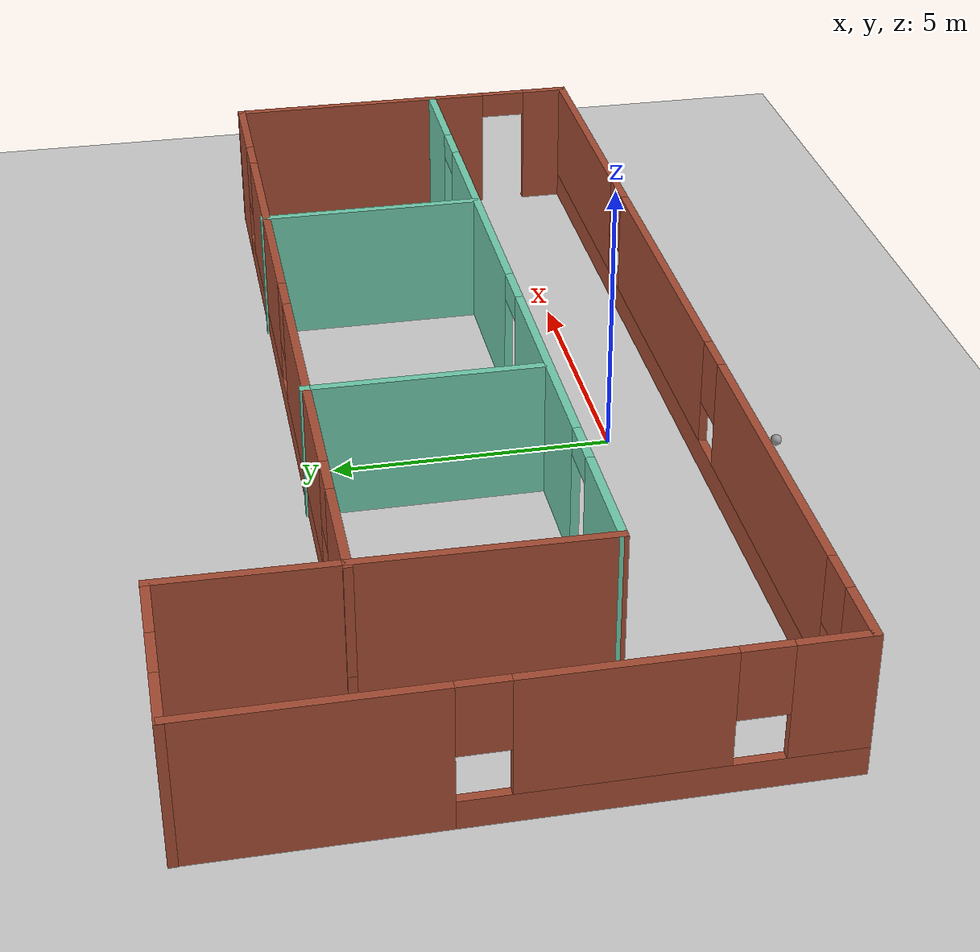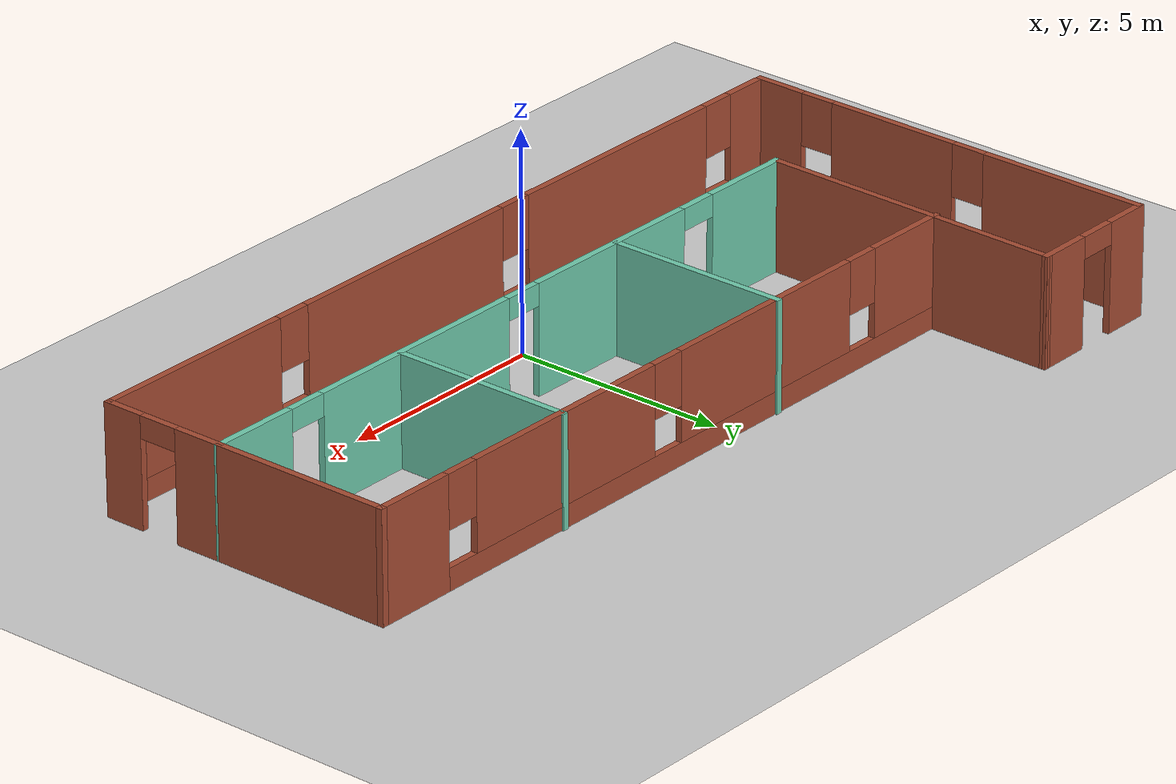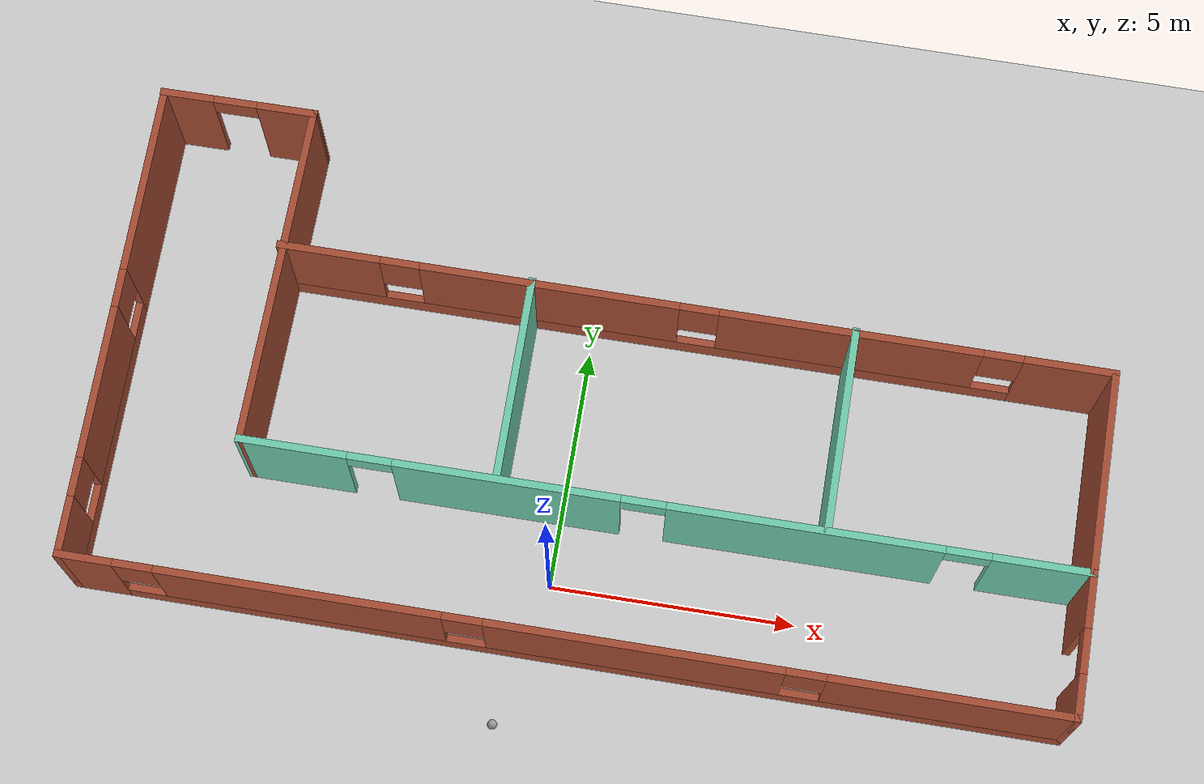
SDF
<sdf version="1.6">
 <world name="default">
  <model name="ground_plane">
   <static>1</static>
   <link name="link">
    <collision name="collision">
     <geometry><plane><normal>0 0 1</normal><size>100 100</size></plane></geometry>
     <surface>
      <contact><collide_bitmask>65535</collide_bitmask></contact>
      <friction><ode><mu>100</mu><mu2>50</mu2></ode></friction>
     </surface>
    </collision>
    <visual name="visual">
     <cast_shadows>0</cast_shadows>
     <geometry><plane><normal>0 0 1</normal><size>100 100</size></plane></geometry>
     <material>
      <script><uri>file://media/materials/scripts/gazebo.material</uri><name>Gazebo/Grey</name></script>
     </material>
    </visual>
   </link>
  </model>
  <light name="sun" type="directional">
   <pose>0 0 10 0 -0 0</pose>
   <diffuse>0.8 0.8 0.8 1</diffuse>
   <specular>0.2 0.2 0.2 1</specular>
   <attenuation>
    <range>1000</range>
    <constant>0.9</constant>
    <linear>0.01</linear>
    <quadratic>0.001</quadratic>
   </attenuation>
   <direction>-0.5 0.1 -0.9</direction>
  </light>
  <gravity>0 0 -9.8</gravity>
  <magnetic_field>6e-06 2.3e-05 -4.2e-05</magnetic_field>
  <atmosphere type="adiabatic"/>
  <physics name="default_physics" default="0" type="ode">
   <max_step_size>0.001</max_step_size>
   <real_time_factor>1</real_time_factor>
   <real_time_update_rate>1000</real_time_update_rate>
  </physics>
  <scene><ambient>0.4 0.4 0.4 1</ambient><background>0.7 0.7 0.7 1</background><shadows>1</shadows></scene>
  <audio><device>default</device></audio>
  <spherical_coordinates>
   <surface_model>EARTH_WGS84</surface_model>
   <latitude_deg>0</latitude_deg>
   <longitude_deg>0</longitude_deg>
   <elevation>0</elevation>
   <heading_deg>0</heading_deg>
  </spherical_coordinates>
  <model name="offices">
   <pose>0.53565 3.48194 0 0 -0 0</pose>
   <link name="Wall_1">
    <pose>-9.9198 -0.025582 0 0 -0 -1.5708</pose>
    <visual name="Wall_1_Visual_0">
     <pose>-3.0075 0 1.25 0 -0 0</pose>
     <geometry><box><size>3.965 0.15 2.5</size></box></geometry>
     <material>
      <script><uri>file://media/materials/scripts/gazebo.material</uri><name>Gazebo/Bricks</name></script>
      <ambient>1 1 1 1</ambient>
     </material>
     <meta><layer>0</layer></meta>
    </visual>
    <collision name="Wall_1_Collision_0">
     <geometry><box><size>3.965 0.15 2.5</size></box></geometry>
     <pose>-3.0075 0 1.25 0 -0 0</pose>
    </collision>
    <visual name="Wall_1_Visual_1">
     <pose>1.9825 0 0.25 0 -0 0</pose>
     <geometry><box><size>6.015 0.15 0.5</size></box></geometry>
     <material>
      <script><uri>file://media/materials/scripts/gazebo.material</uri><name>Gazebo/Bricks</name></script>
      <ambient>1 1 1 1</ambient>
     </material>
     <meta><layer>0</layer></meta>
    </visual>
    <collision name="Wall_1_Collision_1">
     <geometry><box><size>6.015 0.15 0.5</size></box></geometry>
     <pose>1.9825 0 0.25 0 -0 0</pose>
    </collision>
    <visual name="Wall_1_Visual_2">
     <pose>1.36 0 1.5 0 -0 0</pose>
     <geometry><box><size>3.17 0.15 2</size></box></geometry>
     <material>
      <script><uri>file://media/materials/scripts/gazebo.material</uri><name>Gazebo/Bricks</name></script>
      <ambient>1 1 1 1</ambient>
     </material>
     <meta><layer>0</layer></meta>
    </visual>
    <collision name="Wall_1_Collision_2">
     <geometry><box><size>3.17 0.15 2</size></box></geometry>
     <pose>1.36 0 1.5 0 -0 0</pose>
    </collision>
    <visual name="Wall_1_Visual_3">
     <pose>4.3675 0 1.5 0 -0 0</pose>
     <geometry><box><size>1.245 0.15 2</size></box></geometry>
     <material>
      <script><uri>file://media/materials/scripts/gazebo.material</uri><name>Gazebo/Bricks</name></script>
      <ambient>1 1 1 1</ambient>
     </material>
     <meta><layer>0</layer></meta>
    </visual>
    <collision name="Wall_1_Collision_3">
     <geometry><box><size>1.245 0.15 2</size></box></geometry>
     <pose>4.3675 0 1.5 0 -0 0</pose>
    </collision>
    <visual name="Wall_1_Visual_4">
     <pose>-0.625 0 1.9 0 -0 0</pose>
     <geometry><box><size>0.8 0.15 1.2</size></box></geometry>
     <material>
      <script><uri>file://media/materials/scripts/gazebo.material</uri><name>Gazebo/Bricks</name></script>
      <ambient>1 1 1 1</ambient>
     </material>
     <meta><layer>0</layer></meta>
    </visual>
    <collision name="Wall_1_Collision_4">
     <geometry><box><size>0.8 0.15 1.2</size></box></geometry>
     <pose>-0.625 0 1.9 0 -0 0</pose>
    </collision>
    <visual name="Wall_1_Visual_5">
     <pose>3.345 0 1.9 0 -0 0</pose>
     <geometry><box><size>0.8 0.15 1.2</size></box></geometry>
     <material>
      <script><uri>file://media/materials/scripts/gazebo.material</uri><name>Gazebo/Bricks</name></script>
      <ambient>1 1 1 1</ambient>
     </material>
     <meta><layer>0</layer></meta>
    </visual>
    <collision name="Wall_1_Collision_5">
     <geometry><box><size>0.8 0.15 1.2</size></box></geometry>
     <pose>3.345 0 1.9 0 -0 0</pose>
    </collision>
   </link>
   <link name="Wall_11">
    <collision name="Wall_11_Collision">
     <geometry><box><size>4.25 0.15 2.5</size></box></geometry>
     <pose>0 0 1.25 0 -0 0</pose>
    </collision>
    <visual name="Wall_11_Visual">
     <pose>0 0 1.25 0 -0 0</pose>
     <geometry><box><size>4.25 0.15 2.5</size></box></geometry>
     <material>
      <script><uri>file://media/materials/scripts/gazebo.material</uri><name>Gazebo/Bricks</name></script>
      <ambient>1 1 1 1</ambient>
     </material>
     <meta><layer>0</layer></meta>
    </visual>
    <pose>9.9302 -0.020582 0 0 -0 1.5708</pose>
   </link>
   <link name="Wall_12">
    <pose>1.5052 2.02942 0 0 -0 3.14159</pose>
    <visual name="Wall_12_Visual_0">
     <pose>-7.5475 0 1.25 0 -0 0</pose>
     <geometry><box><size>1.905 0.15 2.5</size></box></geometry>
     <material>
      <script><uri>file://media/materials/scripts/gazebo.material</uri><name>Gazebo/Bricks</name></script>
      <ambient>1 1 1 1</ambient>
     </material>
     <meta><layer>0</layer></meta>
    </visual>
    <collision name="Wall_12_Collision_0">
     <geometry><box><size>1.905 0.15 2.5</size></box></geometry>
     <pose>-7.5475 0 1.25 0 -0 0</pose>
    </collision>
    <visual name="Wall_12_Visual_1">
     <pose>0.9525 0 0.25 0 -0 0</pose>
     <geometry><box><size>15.095 0.15 0.5</size></box></geometry>
     <material>
      <script><uri>file://media/materials/scripts/gazebo.material</uri><name>Gazebo/Bricks</name></script>
      <ambient>1 1 1 1</ambient>
     </material>
     <meta><layer>0</layer></meta>
    </visual>
    <collision name="Wall_12_Collision_1">
     <geometry><box><size>15.095 0.15 0.5</size></box></geometry>
     <pose>0.9525 0 0.25 0 -0 0</pose>
    </collision>
    <visual name="Wall_12_Visual_2">
     <pose>-3.145 0 1.5 0 -0 0</pose>
     <geometry><box><size>5.3 0.15 2</size></box></geometry>
     <material>
      <script><uri>file://media/materials/scripts/gazebo.material</uri><name>Gazebo/Bricks</name></script>
      <ambient>1 1 1 1</ambient>
     </material>
     <meta><layer>0</layer></meta>
    </visual>
    <collision name="Wall_12_Collision_2">
     <geometry><box><size>5.3 0.15 2</size></box></geometry>
     <pose>-3.145 0 1.5 0 -0 0</pose>
    </collision>
    <visual name="Wall_12_Visual_3">
     <pose>2.945 0 1.5 0 -0 0</pose>
     <geometry><box><size>5.28 0.15 2</size></box></geometry>
     <material>
      <script><uri>file://media/materials/scripts/gazebo.material</uri><name>Gazebo/Bricks</name></script>
      <ambient>1 1 1 1</ambient>
     </material>
     <meta><layer>0</layer></meta>
    </visual>
    <collision name="Wall_12_Collision_3">
     <geometry><box><size>5.28 0.15 2</size></box></geometry>
     <pose>2.945 0 1.5 0 -0 0</pose>
    </collision>
    <visual name="Wall_12_Visual_4">
     <pose>7.4425 0 1.5 0 -0 0</pose>
     <geometry><box><size>2.115 0.15 2</size></box></geometry>
     <material>
      <script><uri>file://media/materials/scripts/gazebo.material</uri><name>Gazebo/Bricks</name></script>
      <ambient>1 1 1 1</ambient>
     </material>
     <meta><layer>0</layer></meta>
    </visual>
    <collision name="Wall_12_Collision_4">
     <geometry><box><size>2.115 0.15 2</size></box></geometry>
     <pose>7.4425 0 1.5 0 -0 0</pose>
    </collision>
    <visual name="Wall_12_Visual_5">
     <pose>-6.195 0 1.9 0 -0 0</pose>
     <geometry><box><size>0.8 0.15 1.2</size></box></geometry>
     <material>
      <script><uri>file://media/materials/scripts/gazebo.material</uri><name>Gazebo/Bricks</name></script>
      <ambient>1 1 1 1</ambient>
     </material>
     <meta><layer>0</layer></meta>
    </visual>
    <collision name="Wall_12_Collision_5">
     <geometry><box><size>0.8 0.15 1.2</size></box></geometry>
     <pose>-6.195 0 1.9 0 -0 0</pose>
    </collision>
    <visual name="Wall_12_Visual_6">
     <pose>-0.095 0 1.9 0 -0 0</pose>
     <geometry><box><size>0.8 0.15 1.2</size></box></geometry>
     <material>
      <script><uri>file://media/materials/scripts/gazebo.material</uri><name>Gazebo/Bricks</name></script>
      <ambient>1 1 1 1</ambient>
     </material>
     <meta><layer>0</layer></meta>
    </visual>
    <collision name="Wall_12_Collision_6">
     <geometry><box><size>0.8 0.15 1.2</size></box></geometry>
     <pose>-0.095 0 1.9 0 -0 0</pose>
    </collision>
    <visual name="Wall_12_Visual_7">
     <pose>5.985 0 1.9 0 -0 0</pose>
     <geometry><box><size>0.8 0.15 1.2</size></box></geometry>
     <material>
      <script><uri>file://media/materials/scripts/gazebo.material</uri><name>Gazebo/Bricks</name></script>
      <ambient>1 1 1 1</ambient>
     </material>
     <meta><layer>0</layer></meta>
    </visual>
    <collision name="Wall_12_Collision_7">
     <geometry><box><size>0.8 0.15 1.2</size></box></geometry>
     <pose>5.985 0 1.9 0 -0 0</pose>
    </collision>
   </link>
   <link name="Wall_14">
    <collision name="Wall_14_Collision">
     <geometry><box><size>4.25 0.15 2.5</size></box></geometry>
     <pose>0 0 1.25 0 -0 0</pose>
    </collision>
    <visual name="Wall_14_Visual">
     <pose>0 0 1.25 0 -0 0</pose>
     <geometry><box><size>4.25 0.15 2.5</size></box></geometry>
     <material>
      <script><uri>file://media/materials/scripts/gazebo.material</uri><name>Gazebo/Grey</name></script>
      <ambient>0.435294 0.796078 0.67451 1</ambient>
     </material>
     <meta><layer>0</layer></meta>
    </visual>
    <pose>-1.7998 0.019418 0 0 -0 -1.5708</pose>
   </link>
   <link name="Wall_16">
    <collision name="Wall_16_Collision">
     <geometry><box><size>4.25 0.15 2.5</size></box></geometry>
     <pose>0 0 1.25 0 -0 0</pose>
    </collision>
    <visual name="Wall_16_Visual">
     <pose>0 0 1.25 0 -0 0</pose>
     <geometry><box><size>4.25 0.15 2.5</size></box></geometry>
     <material>
      <script><uri>file://media/materials/scripts/gazebo.material</uri><name>Gazebo/Grey</name></script>
      <ambient>0.435294 0.796078 0.67451 1</ambient>
     </material>
     <meta><layer>0</layer></meta>
    </visual>
    <pose>4.7402 0.019418 0 0 -0 -1.5708</pose>
   </link>
   <link name="Wall_2">
    <pose>0.005198 -4.94058 0 0 -0 0</pose>
    <visual name="Wall_2_Visual_0">
     <pose>-9.4225 0 1.25 0 -0 0</pose>
     <geometry><box><size>1.155 0.15 2.5</size></box></geometry>
     <material>
      <script><uri>file://media/materials/scripts/gazebo.material</uri><name>Gazebo/Bricks</name></script>
      <ambient>1 1 1 1</ambient>
     </material>
     <meta><layer>0</layer></meta>
    </visual>
    <collision name="Wall_2_Collision_0">
     <geometry><box><size>1.155 0.15 2.5</size></box></geometry>
     <pose>-9.4225 0 1.25 0 -0 0</pose>
    </collision>
    <visual name="Wall_2_Visual_1">
     <pose>0.5775 0 0.25 0 -0 0</pose>
     <geometry><box><size>18.845 0.15 0.5</size></box></geometry>
     <material>
      <script><uri>file://media/materials/scripts/gazebo.material</uri><name>Gazebo/Bricks</name></script>
      <ambient>1 1 1 1</ambient>
     </material>
     <meta><layer>0</layer></meta>
    </visual>
    <collision name="Wall_2_Collision_1">
     <geometry><box><size>18.845 0.15 0.5</size></box></geometry>
     <pose>0.5775 0 0.25 0 -0 0</pose>
    </collision>
    <visual name="Wall_2_Visual_2">
     <pose>-5.205 0 1.5 0 -0 0</pose>
     <geometry><box><size>5.68 0.15 2</size></box></geometry>
     <material>
      <script><uri>file://media/materials/scripts/gazebo.material</uri><name>Gazebo/Bricks</name></script>
      <ambient>1 1 1 1</ambient>
     </material>
     <meta><layer>0</layer></meta>
    </visual>
    <collision name="Wall_2_Collision_2">
     <geometry><box><size>5.68 0.15 2</size></box></geometry>
     <pose>-5.205 0 1.5 0 -0 0</pose>
    </collision>
    <visual name="Wall_2_Visual_3">
     <pose>1.375 0 1.5 0 -0 0</pose>
     <geometry><box><size>5.88 0.15 2</size></box></geometry>
     <material>
      <script><uri>file://media/materials/scripts/gazebo.material</uri><name>Gazebo/Bricks</name></script>
      <ambient>1 1 1 1</ambient>
     </material>
     <meta><layer>0</layer></meta>
    </visual>
    <collision name="Wall_2_Collision_3">
     <geometry><box><size>5.88 0.15 2</size></box></geometry>
     <pose>1.375 0 1.5 0 -0 0</pose>
    </collision>
    <visual name="Wall_2_Visual_4">
     <pose>7.5575 0 1.5 0 -0 0</pose>
     <geometry><box><size>4.885 0.15 2</size></box></geometry>
     <material>
      <script><uri>file://media/materials/scripts/gazebo.material</uri><name>Gazebo/Bricks</name></script>
      <ambient>1 1 1 1</ambient>
     </material>
     <meta><layer>0</layer></meta>
    </visual>
    <collision name="Wall_2_Collision_4">
     <geometry><box><size>4.885 0.15 2</size></box></geometry>
     <pose>7.5575 0 1.5 0 -0 0</pose>
    </collision>
    <visual name="Wall_2_Visual_5">
     <pose>-8.445 0 1.9 0 -0 0</pose>
     <geometry><box><size>0.8 0.15 1.2</size></box></geometry>
     <material>
      <script><uri>file://media/materials/scripts/gazebo.material</uri><name>Gazebo/Bricks</name></script>
      <ambient>1 1 1 1</ambient>
     </material>
     <meta><layer>0</layer></meta>
    </visual>
    <collision name="Wall_2_Collision_5">
     <geometry><box><size>0.8 0.15 1.2</size></box></geometry>
     <pose>-8.445 0 1.9 0 -0 0</pose>
    </collision>
    <visual name="Wall_2_Visual_6">
     <pose>-1.965 0 1.9 0 -0 0</pose>
     <geometry><box><size>0.8 0.15 1.2</size></box></geometry>
     <material>
      <script><uri>file://media/materials/scripts/gazebo.material</uri><name>Gazebo/Bricks</name></script>
      <ambient>1 1 1 1</ambient>
     </material>
     <meta><layer>0</layer></meta>
    </visual>
    <collision name="Wall_2_Collision_6">
     <geometry><box><size>0.8 0.15 1.2</size></box></geometry>
     <pose>-1.965 0 1.9 0 -0 0</pose>
    </collision>
    <visual name="Wall_2_Visual_7">
     <pose>4.715 0 1.9 0 -0 0</pose>
     <geometry><box><size>0.8 0.15 1.2</size></box></geometry>
     <material>
      <script><uri>file://media/materials/scripts/gazebo.material</uri><name>Gazebo/Bricks</name></script>
      <ambient>1 1 1 1</ambient>
     </material>
     <meta><layer>0</layer></meta>
    </visual>
    <collision name="Wall_2_Collision_7">
     <geometry><box><size>0.8 0.15 1.2</size></box></geometry>
     <pose>4.715 0 1.9 0 -0 0</pose>
    </collision>
   </link>
   <link name="Wall_3">
    <pose>9.9302 -3.50558 0 0 -0 1.5708</pose>
    <visual name="Wall_3_Visual_0">
     <pose>-1.0375 0 1.25 0 -0 0</pose>
     <geometry><box><size>0.944999 0.15 2.5</size></box></geometry>
     <material>
      <script><uri>file://media/materials/scripts/gazebo.material</uri><name>Gazebo/Bricks</name></script>
      <ambient>1 1 1 1</ambient>
     </material>
     <meta><layer>0</layer></meta>
    </visual>
    <collision name="Wall_3_Collision_0">
     <geometry><box><size>0.944999 0.15 2.5</size></box></geometry>
     <pose>-1.0375 0 1.25 0 -0 0</pose>
    </collision>
    <visual name="Wall_3_Visual_1">
     <pose>0.9225 0 1.25 0 -0 0</pose>
     <geometry><box><size>1.175 0.15 2.5</size></box></geometry>
     <material>
      <script><uri>file://media/materials/scripts/gazebo.material</uri><name>Gazebo/Bricks</name></script>
      <ambient>1 1 1 1</ambient>
     </material>
     <meta><layer>0</layer></meta>
    </visual>
    <collision name="Wall_3_Collision_1">
     <geometry><box><size>1.175 0.15 2.5</size></box></geometry>
     <pose>0.9225 0 1.25 0 -0 0</pose>
    </collision>
    <visual name="Wall_3_Visual_2">
     <pose>-0.115001 0 2.25 0 -0 0</pose>
     <geometry><box><size>0.9 0.15 0.5</size></box></geometry>
     <material>
      <script><uri>file://media/materials/scripts/gazebo.material</uri><name>Gazebo/Bricks</name></script>
      <ambient>1 1 1 1</ambient>
     </material>
     <meta><layer>0</layer></meta>
    </visual>
    <collision name="Wall_3_Collision_2">
     <geometry><box><size>0.9 0.15 0.5</size></box></geometry>
     <pose>-0.115001 0 2.25 0 -0 0</pose>
    </collision>
   </link>
   <link name="Wall_4">
    <pose>1.5052 -2.08058 0 0 -0 -3.14041</pose>
    <visual name="Wall_4_Visual_0">
     <pose>-7.47247 0 1.25 0 -0 0</pose>
     <geometry><box><size>2.05506 0.15 2.5</size></box></geometry>
     <material>
      <script><uri>file://media/materials/scripts/gazebo.material</uri><name>Gazebo/Grey</name></script>
      <ambient>0.435294 0.796078 0.67451 1</ambient>
     </material>
     <meta><layer>0</layer></meta>
    </visual>
    <collision name="Wall_4_Collision_0">
     <geometry><box><size>2.05506 0.15 2.5</size></box></geometry>
     <pose>-7.47247 0 1.25 0 -0 0</pose>
    </collision>
    <visual name="Wall_4_Visual_1">
     <pose>-2.805 0 1.25 0 -0 0</pose>
     <geometry><box><size>5.47987 0.15 2.5</size></box></geometry>
     <material>
      <script><uri>file://media/materials/scripts/gazebo.material</uri><name>Gazebo/Grey</name></script>
      <ambient>0.435294 0.796078 0.67451 1</ambient>
     </material>
     <meta><layer>0</layer></meta>
    </visual>
    <collision name="Wall_4_Collision_1">
     <geometry><box><size>5.47987 0.15 2.5</size></box></geometry>
     <pose>-2.805 0 1.25 0 -0 0</pose>
    </collision>
    <visual name="Wall_4_Visual_2">
     <pose>3.105 0 1.25 0 -0 0</pose>
     <geometry><box><size>4.54015 0.15 2.5</size></box></geometry>
     <material>
      <script><uri>file://media/materials/scripts/gazebo.material</uri><name>Gazebo/Grey</name></script>
      <ambient>0.435294 0.796078 0.67451 1</ambient>
     </material>
     <meta><layer>0</layer></meta>
    </visual>
    <collision name="Wall_4_Collision_2">
     <geometry><box><size>4.54015 0.15 2.5</size></box></geometry>
     <pose>3.105 0 1.25 0 -0 0</pose>
    </collision>
    <visual name="Wall_4_Visual_3">
     <pose>7.38754 0 1.25 0 -0 0</pose>
     <geometry><box><size>2.22492 0.15 2.5</size></box></geometry>
     <material>
      <script><uri>file://media/materials/scripts/gazebo.material</uri><name>Gazebo/Grey</name></script>
      <ambient>0.435294 0.796078 0.67451 1</ambient>
     </material>
     <meta><layer>0</layer></meta>
    </visual>
    <collision name="Wall_4_Collision_3">
     <geometry><box><size>2.22492 0.15 2.5</size></box></geometry>
     <pose>7.38754 0 1.25 0 -0 0</pose>
    </collision>
    <visual name="Wall_4_Visual_4">
     <pose>-5.99494 0 2.25 0 -0 0</pose>
     <geometry><box><size>0.9 0.15 0.5</size></box></geometry>
     <material>
      <script><uri>file://media/materials/scripts/gazebo.material</uri><name>Gazebo/Grey</name></script>
      <ambient>0.435294 0.796078 0.67451 1</ambient>
     </material>
     <meta><layer>0</layer></meta>
    </visual>
    <collision name="Wall_4_Collision_4">
     <geometry><box><size>0.9 0.15 0.5</size></box></geometry>
     <pose>-5.99494 0 2.25 0 -0 0</pose>
    </collision>
    <visual name="Wall_4_Visual_5">
     <pose>0.384928 0 2.25 0 -0 0</pose>
     <geometry><box><size>0.9 0.15 0.5</size></box></geometry>
     <material>
      <script><uri>file://media/materials/scripts/gazebo.material</uri><name>Gazebo/Grey</name></script>
      <ambient>0.435294 0.796078 0.67451 1</ambient>
     </material>
     <meta><layer>0</layer></meta>
    </visual>
    <collision name="Wall_4_Collision_5">
     <geometry><box><size>0.9 0.15 0.5</size></box></geometry>
     <pose>0.384928 0 2.25 0 -0 0</pose>
    </collision>
    <visual name="Wall_4_Visual_6">
     <pose>5.82508 0 2.25 0 -0 0</pose>
     <geometry><box><size>0.9 0.15 0.5</size></box></geometry>
     <material>
      <script><uri>file://media/materials/scripts/gazebo.material</uri><name>Gazebo/Grey</name></script>
      <ambient>0.435294 0.796078 0.67451 1</ambient>
     </material>
     <meta><layer>0</layer></meta>
    </visual>
    <collision name="Wall_4_Collision_6">
     <geometry><box><size>0.9 0.15 0.5</size></box></geometry>
     <pose>5.82508 0 2.25 0 -0 0</pose>
    </collision>
   </link>
   <link name="Wall_5">
    <collision name="Wall_5_Collision">
     <geometry><box><size>7.18086 0.15 2.5</size></box></geometry>
     <pose>0 0 1.25 0 -0 0</pose>
    </collision>
    <visual name="Wall_5_Visual">
     <pose>0 0 1.25 0 -0 0</pose>
     <geometry><box><size>7.18086 0.15 2.5</size></box></geometry>
     <material>
      <script><uri>file://media/materials/scripts/gazebo.material</uri><name>Gazebo/Bricks</name></script>
      <ambient>1 1 1 1</ambient>
     </material>
     <meta><layer>0</layer></meta>
    </visual>
    <pose>-6.8648 1.42442 0 0 -0 1.55515</pose>
   </link>
   <link name="Wall_6">
    <pose>-8.3698 4.92942 0 0 -0 -3.13518</pose>
    <visual name="Wall_6_Visual_0">
     <pose>-1.00723 0 1.25 0 -0 0</pose>
     <geometry><box><size>1.25561 0.15 2.5</size></box></geometry>
     <material>
      <script><uri>file://media/materials/scripts/gazebo.material</uri><name>Gazebo/Bricks</name></script>
      <ambient>1 1 1 1</ambient>
     </material>
     <meta><layer>0</layer></meta>
    </visual>
    <collision name="Wall_6_Collision_0">
     <geometry><box><size>1.25561 0.15 2.5</size></box></geometry>
     <pose>-1.00723 0 1.25 0 -0 0</pose>
    </collision>
    <visual name="Wall_6_Visual_1">
     <pose>1.0778 0 1.25 0 -0 0</pose>
     <geometry><box><size>1.11446 0.15 2.5</size></box></geometry>
     <material>
      <script><uri>file://media/materials/scripts/gazebo.material</uri><name>Gazebo/Bricks</name></script>
      <ambient>1 1 1 1</ambient>
     </material>
     <meta><layer>0</layer></meta>
    </visual>
    <collision name="Wall_6_Collision_1">
     <geometry><box><size>1.11446 0.15 2.5</size></box></geometry>
     <pose>1.0778 0 1.25 0 -0 0</pose>
    </collision>
    <visual name="Wall_6_Visual_2">
     <pose>0.070575 0 2.25 0 -0 0</pose>
     <geometry><box><size>0.9 0.15 0.5</size></box></geometry>
     <material>
      <script><uri>file://media/materials/scripts/gazebo.material</uri><name>Gazebo/Bricks</name></script>
      <ambient>1 1 1 1</ambient>
     </material>
     <meta><layer>0</layer></meta>
    </visual>
    <collision name="Wall_6_Collision_2">
     <geometry><box><size>0.9 0.15 0.5</size></box></geometry>
     <pose>0.070575 0 2.25 0 -0 0</pose>
    </collision>
   </link>
   <static>1</static>
  </model>
  <model name="my_ball">
   <link name="link_0">
    <inertial>
     <mass>1</mass>
     <inertia><ixx>0.1</ixx><ixy>0</ixy><ixz>0</ixz><iyy>0.1</iyy><iyz>0</iyz><izz>0.1</izz></inertia>
    </inertial>
    <visual name="visual">
     <geometry><sphere><radius>0.1</radius></sphere></geometry>
     <material>
      <lighting>1</lighting>
      <script><uri>file://media/materials/scripts/gazebo.material</uri><name>Gazebo/Grey</name></script>
      <shader type="vertex"><normal_map>__default__</normal_map></shader>
      <ambient>1 1 1 1</ambient>
      <diffuse>1 1 1 1</diffuse>
      <specular>1 1 1 1</specular>
      <emissive>1 1 1 1</emissive>
     </material>
    </visual>
    <collision name="collision">
     <geometry><sphere><radius>0.1</radius></sphere></geometry>
     <surface>
      <friction>
       <ode><mu>1</mu><mu2>1</mu2><fdir1>0 0 0</fdir1><slip1>0</slip1><slip2>0</slip2></ode>
       <torsional>
        <coefficient>1</coefficient>
        <patch_radius>0</patch_radius>
        <surface_radius>0</surface_radius>
        <use_patch_radius>1</use_patch_radius>
        <ode><slip>0</slip></ode>
       </torsional>
      </friction>
      <bounce><restitution_coefficient>0</restitution_coefficient><threshold>1e+06</threshold></bounce>
      <contact>
       <collide_without_contact>0</collide_without_contact>
       <collide_without_contact_bitmask>1</collide_without_contact_bitmask>
       <collide_bitmask>1</collide_bitmask>
       <ode>
        <soft_cfm>0</soft_cfm>
        <soft_erp>0.2</soft_erp>
        <kp>1e+13</kp>
        <kd>1</kd>
        <max_vel>0.01</max_vel>
        <min_depth>0</min_depth>
       </ode>
       <bullet>
        <split_impulse>1</split_impulse>
        <split_impulse_penetration_threshold>-0.01</split_impulse_penetration_threshold>
        <soft_cfm>0</soft_cfm>
        <soft_erp>0.2</soft_erp>
        <kp>1e+13</kp>
        <kd>1</kd>
       </bullet>
      </contact>
     </surface>
    </collision>
   </link>
   <static>0</static>
   <pose>-0.658095 -2.96589 0.1 0 -0 0</pose>
  </model>
 </world>
</sdf>
